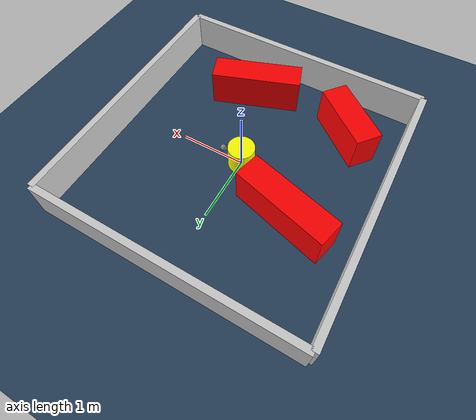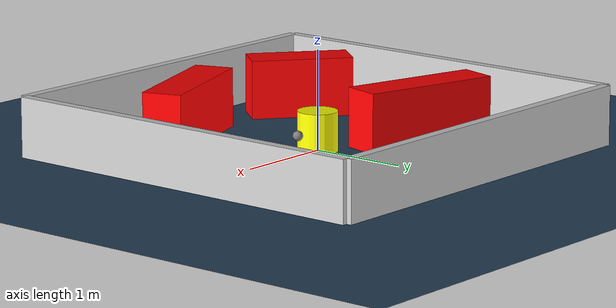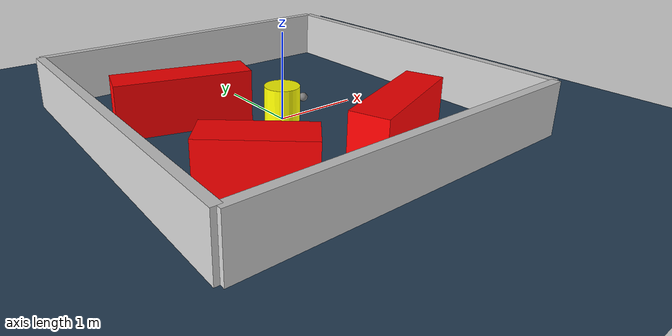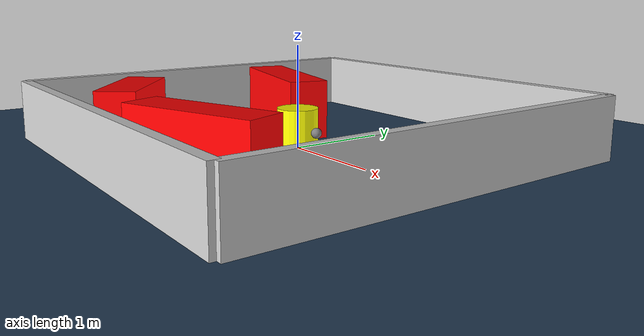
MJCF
<?xml version="1.0" ?>
<mujoco model="generated_environment">
  <option timestep="0.01" integrator="RK4" cone="elliptic"/>
  <default>
    <geom density="1"/>
  </default>
  <asset>
    <texture builtin="gradient" height="3072" rgb1="0.3 0.5 0.7" rgb2="0 0 0" type="skybox" width="512"/>
    <texture builtin="checker" height="300" mark="edge" markrgb="0.8 0.8 0.8" name="groundplane" rgb1="0.2 0.3 0.4" rgb2="0.1 0.2 0.3" type="2d" width="300"/>
    <material name="groundplane" reflectance="0.2" texrepeat="5 5" texture="groundplane" texuniform="true"/>
    <material name="robot" rgba="0.0 1.0 0.0 1"/>
  </asset>
  <worldbody>
    <light dir="0 0 -1" directional="true" pos="0 0 1.5"/>
    <geom condim="4" friction="1.0 0.005 0.001" material="groundplane" name="floor" size="0 0 0.05" type="plane"/>
    <body name="walls">
      <geom name="wall_1" condim="4" pos="-2.0 0.0 0.3" rgba="0.800000011920929 0.800000011920929 0.800000011920929 1.0" size="0.05 2.0 0.3" type="box"/>
      <geom name="wall_2" condim="4" pos="2.0 0.0 0.3" rgba="0.800000011920929 0.800000011920929 0.800000011920929 1.0" size="0.05 2.0 0.3" type="box"/>
      <geom name="wall_3" condim="4" pos="0.0 -2.0 0.3" rgba="0.800000011920929 0.800000011920929 0.800000011920929 1.0" size="2.0 0.05 0.3" type="box"/>
      <geom name="wall_4" condim="4" pos="0.0 2.0 0.3" rgba="0.800000011920929 0.800000011920929 0.800000011920929 1.0" size="2.0 0.05 0.3" type="box"/>
    </body>
    <body name="robot">
      <joint name="joint_x" type="slide" pos="0 0 0" axis="1 0 0"/>
      <joint name="joint_y" type="slide" pos="0 0 0" axis="0 1 0"/>
      <geom name="robot" type="sphere" pos="0.3 0.0 0.2" size="0.05" mass="5." friction="1.0 0.005 0.0001" condim="4" rgba="0.5 0.5 0.5 1.0"/>
      <site name="sensor_ball"/>
    </body>
    <body name="obstacle_movable_1">
      <geom name="obstacle_movable_1" condim="4" pos="0.0 0.0 0.2" euler="0 0 0.0" friction="1.0 0.005 0.001" rgba="1.0 1.0 0.0 1.0" size="0.2 0.2 0.0" type="cylinder" mass="0.1"/>
      <joint type="free"/>
    </body>
    <body name="obstacle_2_static">
      <geom name="obstacle_2_static" condim="4" pos="-1.155998490285607 -1.2076645087702476 0.3" euler="0 0 140.59717724373462" friction="1.0 0.005 0.001" rgba="1 0 0 1" size="0.5208694227956217 0.2 0.3" type="box"/>
    </body>
    <body name="obstacle_3_static">
      <geom name="obstacle_3_static" condim="4" pos="-0.9570224183015417 0.5137095537216452 0.3" euler="0 0 164.95483288821336" friction="1.0 0.005 0.001" rgba="1 0 0 1" size="0.7212894585749455 0.2 0.3" type="box"/>
    </body>
    <body name="obstacle_4_static">
      <geom name="obstacle_4_static" condim="4" pos="0.44120105123270137 -1.2888640187319857 0.3" euler="0 0 199.78436709348424" friction="1.0 0.005 0.001" rgba="1 0 0 1" size="0.6861104401705667 0.2 0.3" type="box"/>
    </body>
  </worldbody>
  <actuator>
    <motor name="actuator_x" joint="joint_x" gear="1" ctrlrange="-1 1"/>
    <motor name="actuator_y" joint="joint_y" gear="1" ctrlrange="-1 1"/>
  </actuator>
</mujoco>
